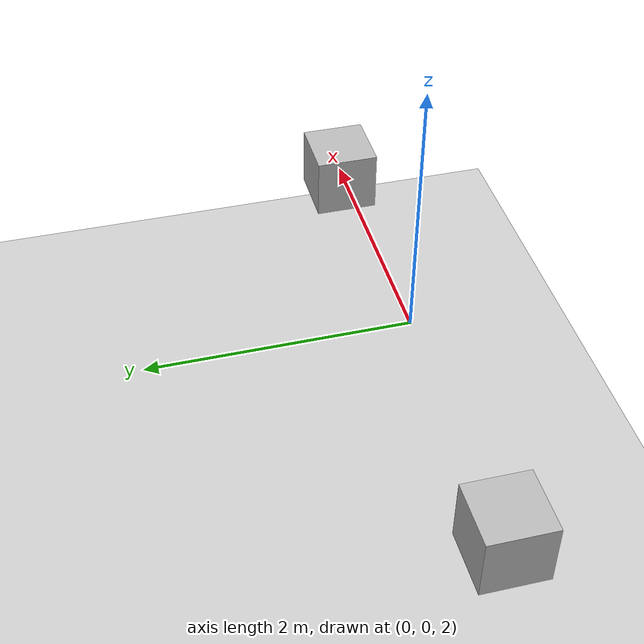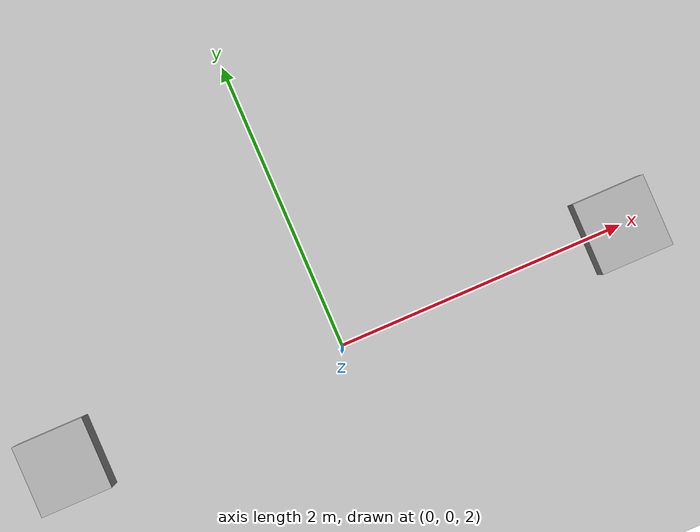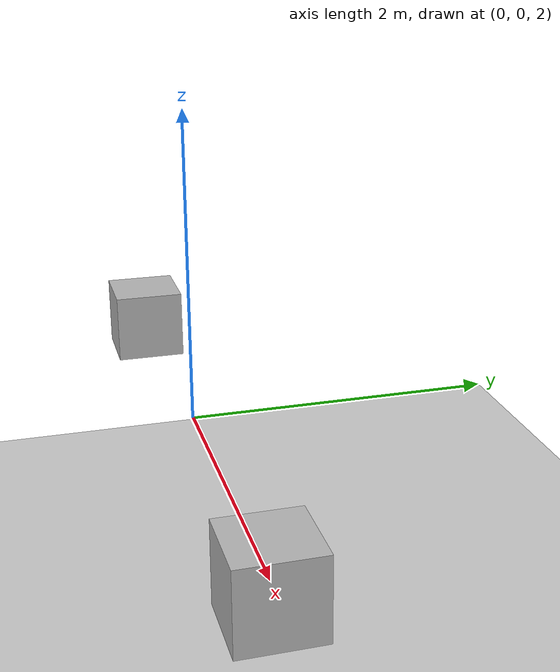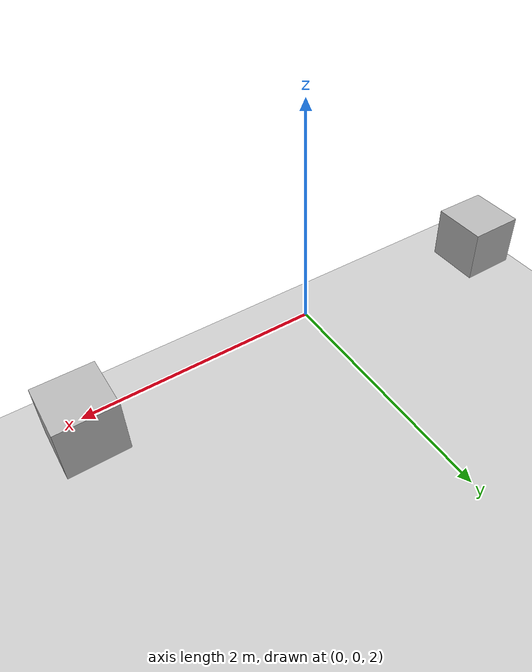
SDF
<?xml version="1.0" ?>
<sdf version="1.4">
  <world name="default">
    <include>
      <uri>model://ground_plane</uri>
    </include>

    <include>
      <uri>model://sun</uri>
    </include>

    <model name ='blockB'>
      <pose>2 0 2 0 0 0</pose>
      <link name ='blockB'>
        <pose>0 0 0 0 0 0</pose>
        <surface>
          <friction>
            <ode>
              <mu>0.1</mu>
            </ode>
          </friction>
        </surface>
        <collision name ='collision'>
          <laser_retro>255</laser_retro>
          <geometry>
            <box><size>0.5 0.5 0.5</size></box>
          </geometry>
        </collision>
        <inertial name ='inertial'>
          <mass>2</mass>
        </inertial>
        <visual name ='visual'>
          <geometry>
            <box><size>0.5 0.5 0.5</size></box>
          </geometry>
        </visual>
      </link>
    </model>
    <model name ='blockA'>
      <pose>-2 0 2 0 0 0</pose>
      <link name ='blockA'>
        <pose>0 0 0 0 0 0</pose>
        <surface>
          <friction>
            <ode>
              <mu>0.7</mu>
            </ode>
          </friction>
        </surface>
        <collision name ='collision'>
          <laser_retro>255</laser_retro>
          <geometry>
            <box><size>0.5 0.5 0.5</size></box>
          </geometry>
        </collision>
        <inertial name ='inertial'>
          <mass>2</mass>
        </inertial>
        <visual name ='visual'>
          <geometry>
            <box><size>0.5 0.5 0.5</size></box>
          </geometry>
        </visual>
      </link>
    </model>

    <plugin name="joint_example_plugin" filename="libjoint_example_plugin.so"/>

  </world>
</sdf>
